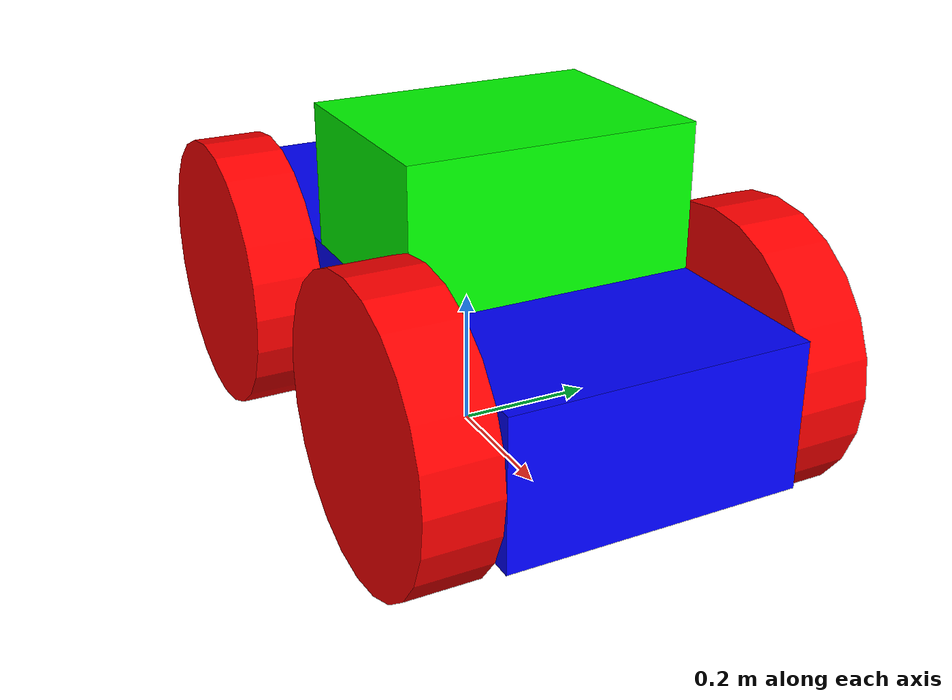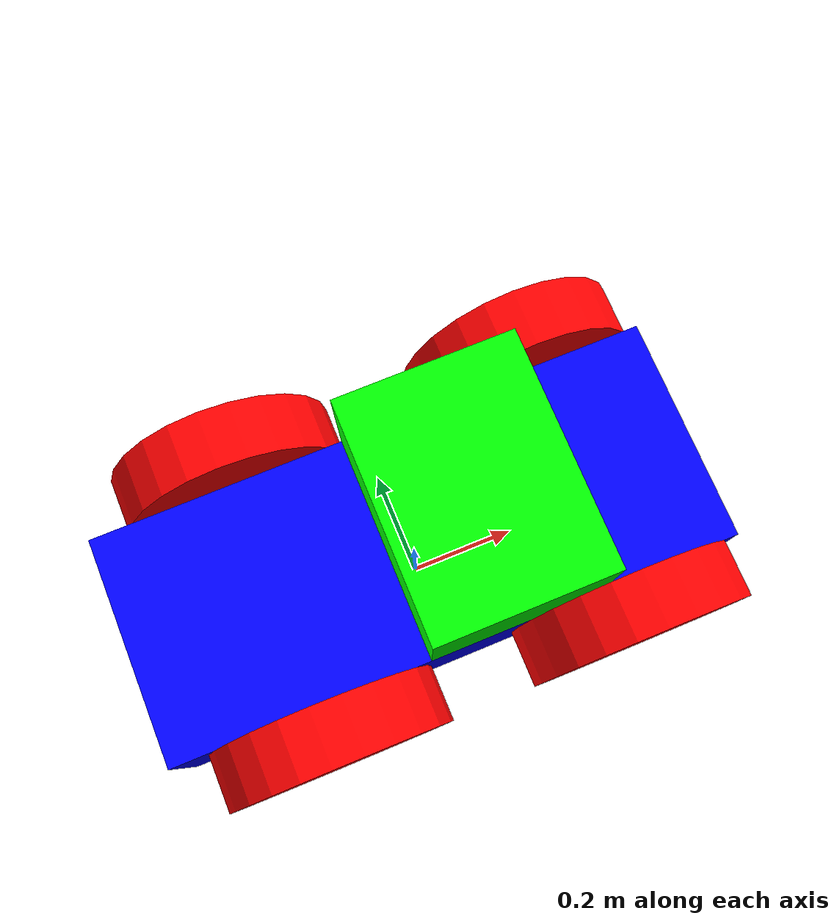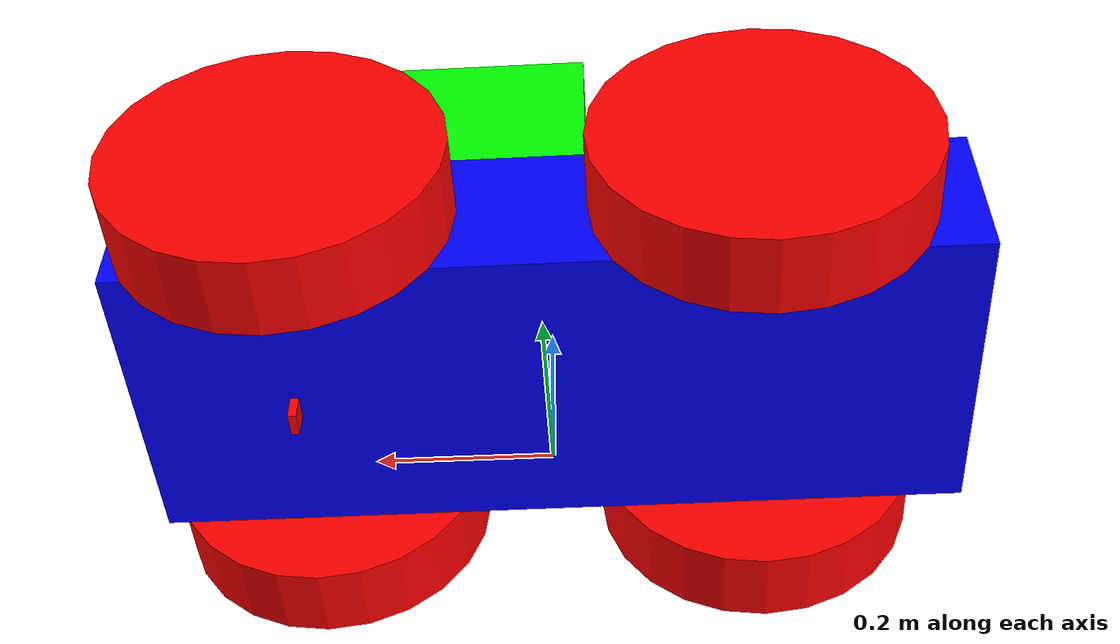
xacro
<?xml version="1.0"?>
<robot xmlns:xacro="http://www.ros.org/wiki/xacro"  name="robot">
    <xacro:property name="chassis_offset" value="-0.1" />
    <xacro:property name="chassis_width" value="0.3" />
    <xacro:property name="chassis_height" value="0.15" />
    <xacro:property name="chassis_length" value="0.3" />

    <xacro:property name="wheel_offset" value="0.175" />
    <xacro:property name="wheel_radius" value="0.05" />
    <xacro:property name="wheel_thickness" value="0.04" />

    <xacro:property name="caster_offset" value="0.24" />
    <xacro:property name="caster_radius" value="0.05" />

    <xacro:include filename="inertial.xacro" />
    <xacro:include filename="gazebo.xacro" />

    <xacro:include filename="robot_core.xacro" />
    <xacro:include filename="camera.xacro" />
</robot>

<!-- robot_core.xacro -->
<robot xmlns:xacro="http://www.ros.org/wiki/xacro">

    <xacro:include filename="colors.xacro" />
    <xacro:include filename="inertial.xacro" />

    <link name="base_link">
    </link>

    <xacro:property name="chassis_joint_x" value="0"/>
    <xacro:property name="chassis_joint_y" value="0"/>
    <xacro:property name="chassis_joint_z" value="0"/>

    <joint name="chassis_joint" type="fixed">
        <parent link="base_link"/>
        <child link="chassis"/>
        <origin xyz="${chassis_joint_x} ${chassis_joint_y} ${chassis_joint_z}"/>
    </joint>

    <xacro:property name="chassis_x" value="0"/>
    <xacro:property name="chassis_y" value="0"/>
    <xacro:property name="chassis_z" value="0.2"/>

    <xacro:property name="chassis_w" value="1.0"/>
    <xacro:property name="chassis_l" value="0.4"/>
    <xacro:property name="chassis_h" value="0.2"/>

    <xacro:property name="chassis_roll" value="0"/>
    <xacro:property name="chassis_pitch" value="0"/>
    <xacro:property name="chassis_yaw" value="0"/>

    <xacro:property name="chassis_m" value="0.5"/>

    <link name="chassis">
        <visual>
            <origin xyz="${chassis_x} ${chassis_y} ${chassis_z}"/>
            <geometry>
                <box size="${chassis_w} ${chassis_l} ${chassis_h}"/>
            </geometry>
            <material name="blue"/>
        </visual>
        <collision>
            <origin xyz="${chassis_x} ${chassis_y} ${chassis_z}" rpy="${chassis_roll} ${chassis_pitch} ${chassis_yaw}"/>
            <geometry>
                <box size="${chassis_w} ${chassis_l} ${chassis_h}"/>
            </geometry>
        </collision>
        <xacro:inertial_box mass="${chassis_m}" x="${chassis_w}" y="${chassis_l}" z="${chassis_h}">
            <origin xyz="${chassis_x} ${chassis_y} ${chassis_z}" rpy="${chassis_roll} ${chassis_pitch} ${chassis_yaw}"/>
        </xacro:inertial_box>
    </link>

    <!-- LEFT WHEEL -->

    <xacro:property name="l_wheel_joint_x" value="0.3"/>
    <xacro:property name="l_wheel_joint_y" value="0.25"/>
    <xacro:property name="l_wheel_joint_z" value="0.2"/>

    <xacro:property name="l_wheel_joint_ax" value="0"/>
    <xacro:property name="l_wheel_joint_ay" value="0"/>
    <xacro:property name="l_wheel_joint_az" value="1"/>

    <xacro:property name="l_wheel_joint_roll" value="-${pi/2}"/>
    <xacro:property name="l_wheel_joint_pitch" value="0"/>
    <xacro:property name="l_wheel_joint_yaw" value="0"/>

    <joint name="left_wheel_joint" type="continuous">
        <parent link="base_link"/>
        <child link="left_wheel"/>
        <origin xyz="${l_wheel_joint_x} ${l_wheel_joint_y} ${l_wheel_joint_z}" rpy="${l_wheel_joint_roll} ${l_wheel_joint_pitch} ${l_wheel_joint_yaw}" />
        <axis xyz="${l_wheel_joint_ax} ${l_wheel_joint_ay} ${l_wheel_joint_az}"/>
    </joint>

    <xacro:property name="l_wheel_length" value="0.1"/>
    <xacro:property name="l_wheel_radius" value="0.2"/>
    <xacro:property name="l_wheel_m" value="0.1"/>

    <xacro:property name="l_wheel_x" value="0"/>
    <xacro:property name="l_wheel_y" value="0"/>
    <xacro:property name="l_wheel_z" value="0"/>

    <xacro:property name="l_wheel_roll" value="0"/>
    <xacro:property name="l_wheel_pitch" value="0"/>
    <xacro:property name="l_wheel_yaw" value="0"/>

    <link name="left_wheel">
        <visual>
            <geometry>
                <cylinder length="${l_wheel_length}" radius="${l_wheel_radius}"/>
            </geometry>
            <material name="red"/>
        </visual>
        <collision>
            <geometry>
                <cylinder length="${l_wheel_length}" radius="${l_wheel_radius}"/>
            </geometry>
        </collision>
        <xacro:inertial_cylinder mass="${l_wheel_m}" length="${l_wheel_length}" radius="${l_wheel_radius}">
            <origin xyz="${l_wheel_x} ${l_wheel_y} ${l_wheel_z}" rpy="${l_wheel_roll} ${l_wheel_pitch} ${l_wheel_yaw}"/>
        </xacro:inertial_cylinder>
    </link>

    <!-- RIGHT WHEEL -->

    <xacro:property name="r_wheel_joint_x" value="0.3"/>
    <xacro:property name="r_wheel_joint_y" value="-0.25"/>
    <xacro:property name="r_wheel_joint_z" value="0.2"/>

    <xacro:property name="r_wheel_joint_ax" value="0"/>
    <xacro:property name="r_wheel_joint_ay" value="0"/>
    <xacro:property name="r_wheel_joint_az" value="-1"/>

    <xacro:property name="r_wheel_joint_roll" value="${pi/2}"/>
    <xacro:property name="r_wheel_joint_pitch" value="0"/>
    <xacro:property name="r_wheel_joint_yaw" value="0"/>

    <joint name="right_wheel_joint" type="continuous">
        <parent link="base_link"/>
        <child link="right_wheel"/>
        <origin xyz="${r_wheel_joint_x} ${r_wheel_joint_y} ${r_wheel_joint_z}" rpy="${r_wheel_joint_roll} ${r_wheel_joint_pitch} ${r_wheel_joint_yaw}" />
        <axis xyz="${r_wheel_joint_ax} ${r_wheel_joint_ay} ${r_wheel_joint_az}"/>
    </joint>

    <xacro:property name="r_wheel_length" value="0.1"/>
    <xacro:property name="r_wheel_radius" value="0.2"/>
    <xacro:property name="r_wheel_m" value="0.1"/>

    <xacro:property name="r_wheel_x" value="0"/>
    <xacro:property name="r_wheel_y" value="0"/>
    <xacro:property name="r_wheel_z" value="0"/>

    <xacro:property name="r_wheel_roll" value="0"/>
    <xacro:property name="r_wheel_pitch" value="0"/>
    <xacro:property name="r_wheel_yaw" value="0"/>

    <link name="right_wheel">
        <visual>
            <geometry>
                <cylinder length="${r_wheel_length}" radius="${r_wheel_radius}"/>
            </geometry>
            <material name="red"/>
        </visual>
        <collision>
            <geometry>
                <cylinder length="${r_wheel_length}" radius="${r_wheel_radius}"/>
            </geometry>
        </collision>
        <xacro:inertial_cylinder mass="${r_wheel_m}" length="${r_wheel_length}" radius="${r_wheel_radius}">
            <origin xyz="${r_wheel_x} ${r_wheel_y} ${r_wheel_z}" rpy="${r_wheel_roll} ${r_wheel_pitch} ${r_wheel_yaw}"/>
        </xacro:inertial_cylinder>
    </link>
    <!-- LEFT WHEEL1 -->

    <joint name="left_wheel_joint1" type="continuous">
        <parent link="base_link"/>
        <child link="left_wheel1"/>
        <origin xyz="-0.25 ${l_wheel_joint_y} ${l_wheel_joint_z}" rpy="${l_wheel_joint_roll} ${l_wheel_joint_pitch} ${l_wheel_joint_yaw}" />
        <axis xyz="${l_wheel_joint_ax} ${l_wheel_joint_ay} ${l_wheel_joint_az}"/>
    </joint>

    <link name="left_wheel1">
        <visual>
            <geometry>
                <cylinder length="${l_wheel_length}" radius="${l_wheel_radius}"/>
            </geometry>
            <material name="red"/>
        </visual>
        <collision>
            <geometry>
                <cylinder length="${l_wheel_length}" radius="${l_wheel_radius}"/>
            </geometry>
        </collision>
        <xacro:inertial_cylinder mass="${l_wheel_m}" length="${l_wheel_length}" radius="${l_wheel_radius}">
            <origin xyz="${l_wheel_x} ${l_wheel_y} ${l_wheel_z}" rpy="${l_wheel_roll} ${l_wheel_pitch} ${l_wheel_yaw}"/>
        </xacro:inertial_cylinder>
    </link>

    <!-- RIGHT WHEEL1 -->

    <joint name="right_wheel_joint1" type="continuous">
        <parent link="base_link"/>
        <child link="right_wheel1"/>
        <origin xyz="-0.25 ${r_wheel_joint_y} ${r_wheel_joint_z}" rpy="${r_wheel_joint_roll} ${r_wheel_joint_pitch} ${r_wheel_joint_yaw}" />
        <axis xyz="${r_wheel_joint_ax} ${r_wheel_joint_ay} ${r_wheel_joint_az}"/>
    </joint>

    <link name="right_wheel1">
        <visual>
            <geometry>
                <cylinder length="${r_wheel_length}" radius="${r_wheel_radius}"/>
            </geometry>
            <material name="red"/>
        </visual>
        <collision>
            <geometry>
                <cylinder length="${r_wheel_length}" radius="${r_wheel_radius}"/>
            </geometry>
        </collision>
        <xacro:inertial_cylinder mass="${r_wheel_m}" length="${r_wheel_length}" radius="${r_wheel_radius}">
            <origin xyz="${r_wheel_x} ${r_wheel_y} ${r_wheel_z}" rpy="${r_wheel_roll} ${r_wheel_pitch} ${r_wheel_yaw}"/>
        </xacro:inertial_cylinder>
    </link>

    <xacro:property name="robo_hub_joint_x" value="0"/>
    <xacro:property name="robo_hub_joint_y" value="0"/>
    <xacro:property name="robo_hub_joint_z" value="0"/>

    <joint name="robo_hub_joint" type="fixed">
        <parent link="base_link"/>
        <child link="robo_hub"/>
        <origin xyz="${robo_hub_joint_x} ${robo_hub_joint_y} ${robo_hub_joint_z}"/>
    </joint>

    <xacro:property name="robo_hub_x" value="0.1"/>
    <xacro:property name="robo_hub_y" value="0"/>
    <xacro:property name="robo_hub_z" value="0.4"/>

    <xacro:property name="robo_hub_l" value="0.4"/>
    <xacro:property name="robo_hub_w" value="0.3"/>
    <xacro:property name="robo_hub_h" value="0.2"/>

    <xacro:property name="robo_hub_roll" value="0"/>
    <xacro:property name="robo_hub_pitch" value="0"/>
    <xacro:property name="robo_hub_yaw" value="0"/>

    <xacro:property name="robo_hub_m" value="0.5"/>

    <link name="robo_hub">
        <visual>
            <origin xyz="${robo_hub_x} ${robo_hub_y} ${robo_hub_z}"/>
            <geometry>
                <box size="${robo_hub_w} ${robo_hub_l} ${robo_hub_h}"/>
            </geometry>
            <material name="green"/>
        </visual>
        <collision>
            <origin xyz="${robo_hub_x} ${robo_hub_y} ${robo_hub_z}" rpy="${robo_hub_roll} ${robo_hub_pitch} ${robo_hub_yaw}"/>
            <geometry>
                <box size="${robo_hub_w} ${robo_hub_l} ${robo_hub_h}"/>
            </geometry>
        </collision>
        <xacro:inertial_box mass="${robo_hub_m}" x="${robo_hub_w}" y="${robo_hub_l}" z="${robo_hub_h}">
            <origin xyz="${robo_hub_x} ${robo_hub_y} ${robo_hub_z}" rpy="${robo_hub_roll} ${robo_hub_pitch} ${robo_hub_yaw}"/>
        </xacro:inertial_box>
    </link>
</robot>

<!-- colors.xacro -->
<robot xmlns:xacro="http://www.ros.org/wiki/xacro">
    <material name="white">
        <color rgba="1 1 1 1"/>
    </material>

    <material name="orange">
        <color rgba="1 0.3 0.1 1"/>
    </material>

    <material name="green">
        <color rgba="0 1 0 1"/>
    </material>

    <material name="blue">
        <color rgba="0 0 1 1"/>
    </material>

    <material name="black">
        <color rgba="0 0 0 1"/>
    </material>

    <material name="magenta">
        <color rgba="1 0 1 1"/>
    </material>

    <material name="red">
        <color rgba="1 0 0 1"/>
    </material>
</robot>

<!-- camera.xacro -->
<robot xmlns:xacro="http://www.ros.org/wiki/xacro" >
    <joint name="camera_joint" type="fixed">
        <parent link="chassis"/>
        <child link="camera_link"/>
        <origin xyz="0.305 0 0.08" rpy="0 0 0"/>
    </joint>

    <link name="camera_link">
        <visual>
            <geometry>
                <box size="0.010 0.03 0.03"/>
            </geometry>
            <material name="red"/>
        </visual>
    </link>

    <joint name="camera_optical_joint" type="fixed">
        <parent link="camera_link"/>
        <child link="camera_link_optical"/>
        <origin xyz="0 0 0" rpy="${-pi/2} 0 ${-pi/2}"/>
    </joint>

    <link name="camera_link_optical"></link>

    <gazebo reference="camera_link">
        <sensor name="camera" type="camera">
            <camera>
                <horizontal_fov>1.089</horizontal_fov>
                <image>
                    <format>R8G8B8</format>
                    <width>640</width>
                    <height>480</height>
                </image>
                <clip>
                    <near>0.05</near>
                    <far>8.0</far>
                </clip>
            </camera>
            <always_on>1</always_on>
            <update_rate>30</update_rate>
            <visualize>true</visualize>
            <topic>camera/image_raw</topic>
        </sensor>
    </gazebo>

</robot>
